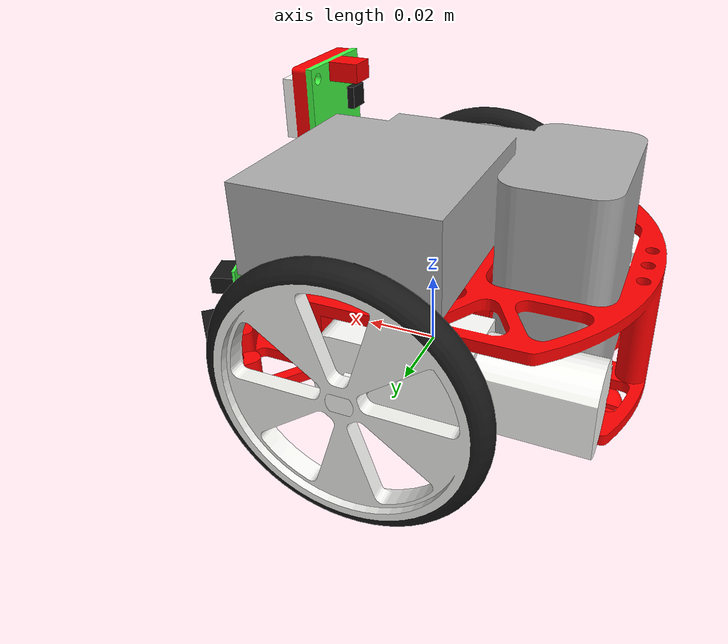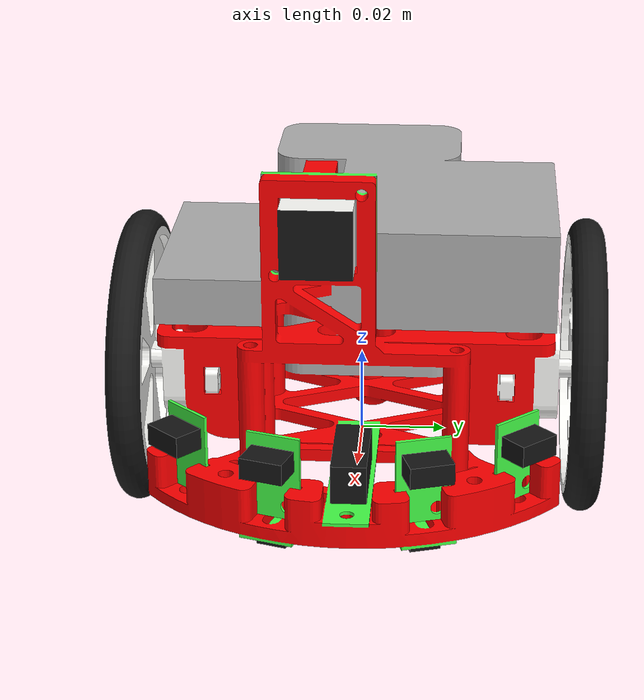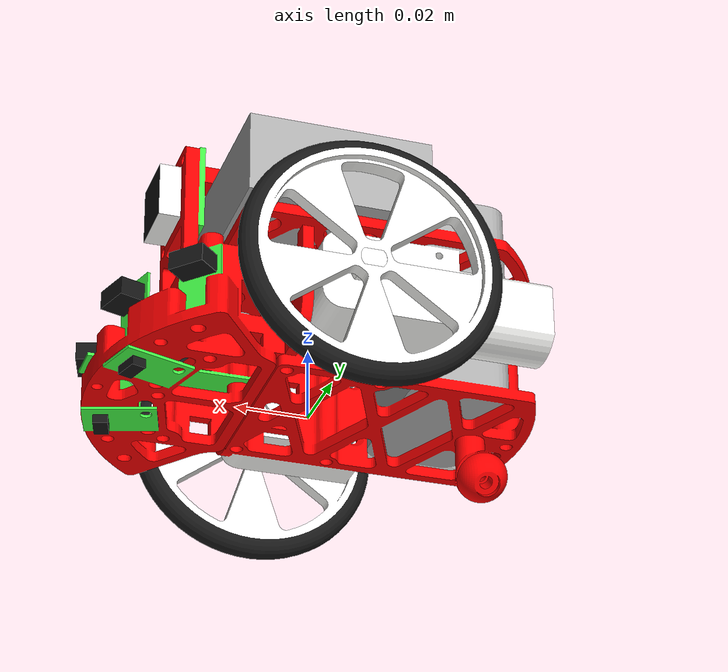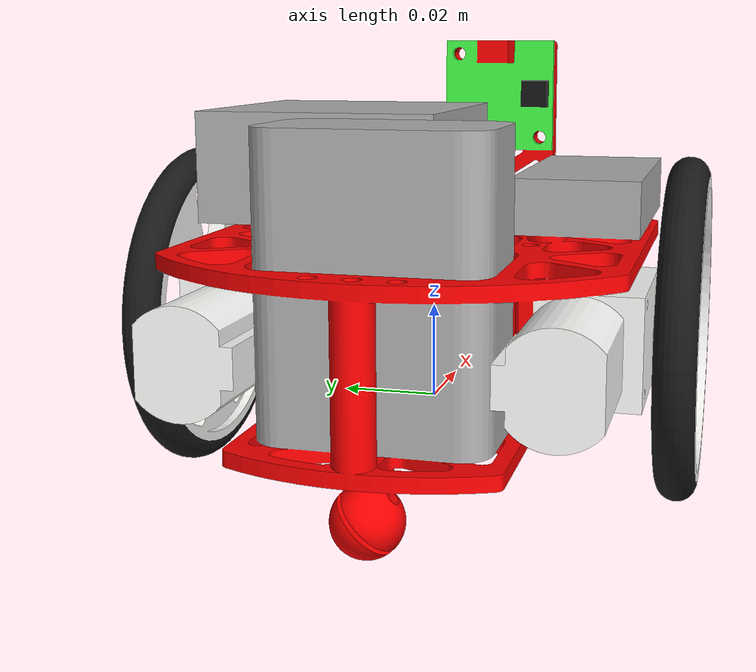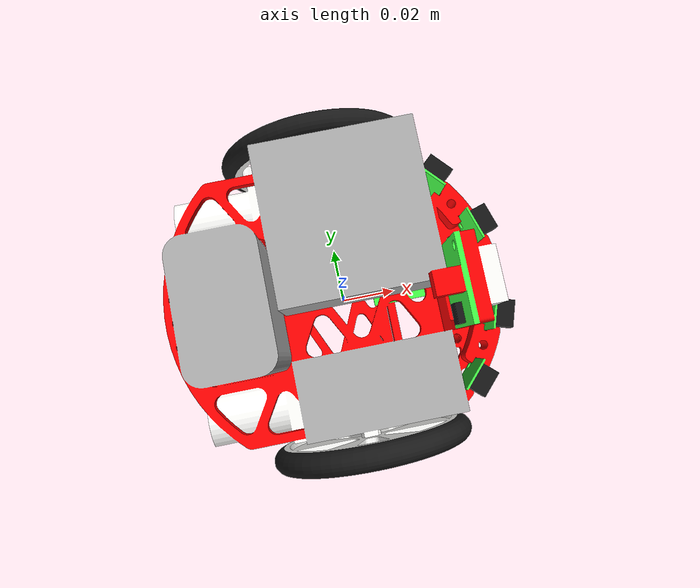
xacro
<?xml version="1.0"?>
<robot name="prisme" xmlns:xacro="http://www.ros.org/wiki/xacro">

  <xacro:property name="mass_body" value="0.300" />
  <xacro:property name="mass_wheel" value="0.025" />
  <xacro:property name="mass_bpack" value="0.300" />

  <xacro:property name="width" value="0.0936" /> <!-- 2*46.8 = 93.6 mm -->
  <xacro:property name="length" value="0.120" /> <!-- 120 mm -->
  <xacro:property name="height" value="0.036" /> <!-- 18+75=93 mm -->
  <xacro:property name="height_axis" value="0.018" /> <!-- 18 mm -->
  <xacro:property name="offset_side" value="0.002" /> <!-- 2 mm -->

  <xacro:property name="wheel_thick" value="0.008" /> <!-- 8 mm -->
  <xacro:property name="wheel_radius" value="0.035" /> <!-- 35 mm -->
  <xacro:property name="wheel_separation" value="${width+2*offset_side+wheel_thick}"/>

  <xacro:property name="caster_sphere_rad" value="0.006" /> <!-- 6 mm -->
  <xacro:property name="caster_rod_length" value="${(wheel_radius-height_axis)-2*caster_sphere_rad}" />
  <xacro:property name="caster_offset" value="0.045" /> <!-- 45 mm -->

  <xacro:property name="bpack_length" value="0.028" /> <!-- 28 mm -->
  <xacro:property name="bpack_width" value="0.045" /> <!-- 45 mm -->
  <xacro:property name="bpack_offset" value="0.010" /> <!-- 10 mm -->
  <xacro:property name="bpack_height" value="0.058" /> <!-- 58 mm -->

  <xacro:property name="ir_front_rad" value="0.06" />
  <xacro:property name="ir_angle1" value="${radians(17.5)}" />
  <xacro:property name="ir_angle2" value="${radians(42.5)}" />

  <xacro:property name="ir_under_x" value="0.052" />
  <xacro:property name="ir_under_y" value="0.012" />

  <!-- Import all Gazebo-customization elements, including Gazebo colors -->
  <xacro:include filename="$(find prisme_description)/urdf/prisme.gazebo" />
  <!-- Import Rviz colors -->
  <xacro:include filename="$(find prisme_description)/urdf/materials.xacro" />

  <!-- Base Link -->
  <link name="base">
    <collision>
      <origin xyz="0 0 0" rpy="${pi/2} 0 ${pi/2}"/>
      <geometry>
        <mesh filename="package://prisme_description/meshes/simplified_body_v2.stl" scale="0.001 0.001 0.001"/>
      </geometry>
    </collision>

    <visual>
      <origin xyz="0 0 0" rpy="0 0 ${pi/2}"/>
      <geometry>
        <mesh filename="package://prisme_description/meshes/body.dae"/>
      </geometry>
    </visual>
  </link>

  <link name="base_dummy_inertia">
    <inertial>
      <origin xyz="0 0 ${height/2}" rpy="0 0 0"/>
      <mass value="${mass_body}"/>
      <inertia
        ixx="${3e-4}" ixy="0.0" ixz="0.0"
        iyy="${5e-4}" iyz="0.0"
        izz="${6e-4}"/>
    </inertial>
  </link>

  <joint name="joint_base_dummy_inertia" type="fixed">
    <parent link="base"/>
    <child link="base_dummy_inertia"/>
    <origin xyz="0 0 0" rpy="0 0 0"/>
  </joint>

  <!-- Wheel Macro -->
  <xacro:macro name="wheel" params="side reflect">
    <link name="wheel_${side}">
      <collision>
        <origin rpy="${reflect*pi/2} 0 0" />
        <geometry>
          <cylinder length="${wheel_thick}" radius="${wheel_radius}" />
        </geometry>
      </collision>

      <visual>
        <origin xyz="0 -${wheel_thick/2} 0" rpy="0 0 ${pi/2}" />
        <geometry>
          <mesh filename="package://prisme_description/meshes/wheel.dae"/>
        </geometry>
      </visual>

      <inertial>
        <origin xyz="0 0 0" rpy="0 0 0"/>
        <mass value="${mass_wheel}"/>
        <inertia
          ixx="${0.8e-5}" ixy="0.0" ixz="0.0"
          iyy="${1.5e-5}" iyz="0.0"
          izz="${0.8e-5}"/>
      </inertial>
    </link>

    <joint name="joint_${side}" type="continuous">
      <parent link="base"/>
      <child link="wheel_${side}"/>
      <origin xyz="0 ${reflect*(width/2+offset_side+wheel_thick/2)} ${height_axis}" rpy="0 0 0"/>
      <axis xyz="0 1 0"/>
      <limit
        effort="100"
        velocity="10" />
      <dynamics friction="1" damping="1.0"/>
    </joint>

    <transmission name="trans_${side}">
      <type>transmission_interface/SimpleTransmission</type>
      <joint name="joint_${side}">
        <hardwareInterface>VelocityJointInterface</hardwareInterface>
      </joint>
      <actuator name="motor_${side}">
        <hardwareInterface>VelocityJointInterface</hardwareInterface>
        <mechanicalReduction>1</mechanicalReduction>
      </actuator>
    </transmission>

  </xacro:macro>

  <!-- Wheels -->
  <xacro:wheel side="left" reflect="1" />
  <xacro:wheel side="right" reflect="-1" />

  <!-- Caster rod Link -->
  <link name="caster_rod">
    <collision>
      <geometry>
        <cylinder length="${caster_rod_length}" radius="${caster_sphere_rad/3}"/>
      </geometry>
    </collision>
  </link>

  <!-- Caster rod Joint -->
  <joint name="joint_caster_rod" type="fixed">
    <parent link="base"/>
    <child link="caster_rod"/>
    <origin xyz="${-caster_offset} 0 ${-caster_rod_length/2}" rpy="0 0 0"/>
  </joint>

  <!-- Caster sphere Link -->
  <link name="caster_sphere">
    <collision>
      <geometry>
        <sphere radius="${caster_sphere_rad}"/>
      </geometry>
    </collision>
  </link>

  <!-- Caster sphere Joint -->
  <joint name="joint_caster_sphere" type="fixed">
    <parent link="caster_rod"/>
    <child link="caster_sphere"/>
    <origin xyz="0 0 ${-caster_rod_length/2-caster_sphere_rad}" rpy="0 0 0"/>
  </joint>

  <!-- Bpack Link -->
  <link name="bpack">
    <collision>
      <geometry>
        <box size="${bpack_length} ${bpack_width} ${bpack_height}"/>
      </geometry>
    </collision>

    <inertial>
      <origin xyz="0.0 0.0 0.0" rpy="0 0 0"/>
      <mass value="${mass_bpack}"/>
      <inertia
        ixx="${1.5e-4}" ixy="0.0" ixz="0.0"
        iyy="${1e-4}" iyz="0.0"
        izz="${0.7e-4}"/>
    </inertial>
  </link>

  <!-- Bpack Joint -->
  <joint name="joint_bpack" type="fixed">
    <parent link="base"/>
    <child link="bpack"/>
    <origin xyz="${-(length/2 - bpack_offset - bpack_length/2)} 0 ${bpack_height/2}" rpy="0 0 0"/>
  </joint>

  <!-- IR front Macro -->
  <xacro:macro name="ir_front" params="position angle">
    <link name="ir_front_${position}">
    </link>

    <joint name="joint_ir_front_${position}" type="fixed">
      <parent link="base"/>
      <child link="ir_front_${position}"/>
      <origin xyz="${ir_front_rad*cos(angle)} ${ir_front_rad*sin(angle)} 0.018" rpy="0 0 ${angle}"/>
    </joint>
  </xacro:macro>

  <xacro:ir_front position="left_center" angle="${ir_angle1}" />
  <xacro:ir_front position="right_center" angle="${-ir_angle1}" />
  <xacro:ir_front position="left" angle="${ir_angle2}" />
  <xacro:ir_front position="right" angle="${-ir_angle2}" />

  <!-- IR under Macro -->
  <xacro:macro name="ir_under" params="position reflect">
    <link name="ir_under_${position}">
    </link>

    <joint name="joint_ir_under_${position}" type="fixed">
      <parent link="base"/>
      <child link="ir_under_${position}"/>
      <origin xyz="${ir_under_x} ${ir_under_y*reflect} 0" rpy="0 ${pi/2} 0"/>
    </joint>
  </xacro:macro>

  <xacro:ir_under position="left" reflect="1" />
  <xacro:ir_under position="right" reflect="-1" />

  <!-- Linear Camera Link -->
  <link name="lc">
  </link>

  <!-- Linear Camera Joint -->
  <joint name="joint_lc" type="fixed">
    <parent link="base"/>
    <child link="lc"/>
    <origin xyz="0.04 -0.008 0.065" rpy="0 0 0"/>
  </joint>

</robot>
